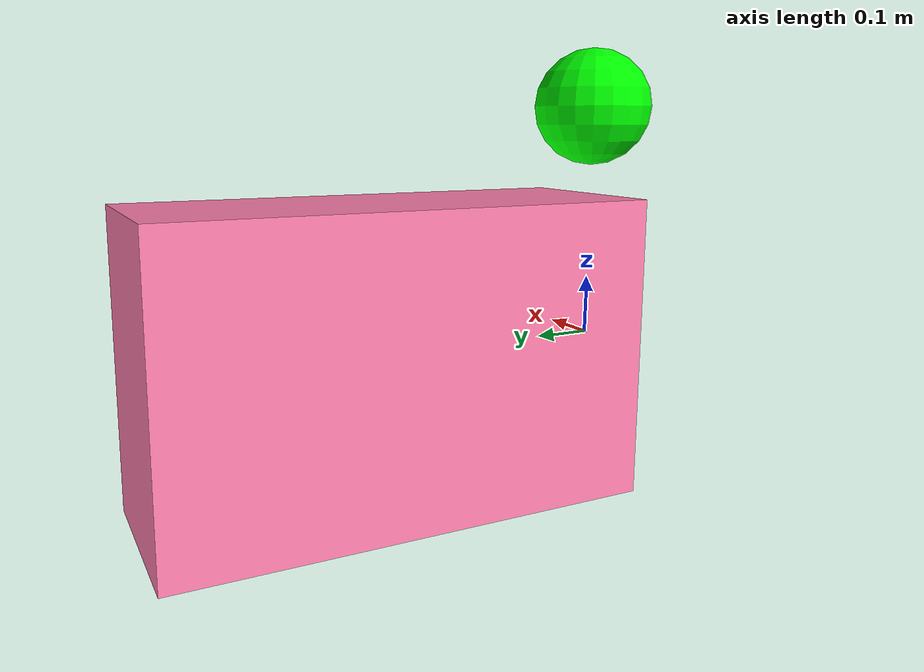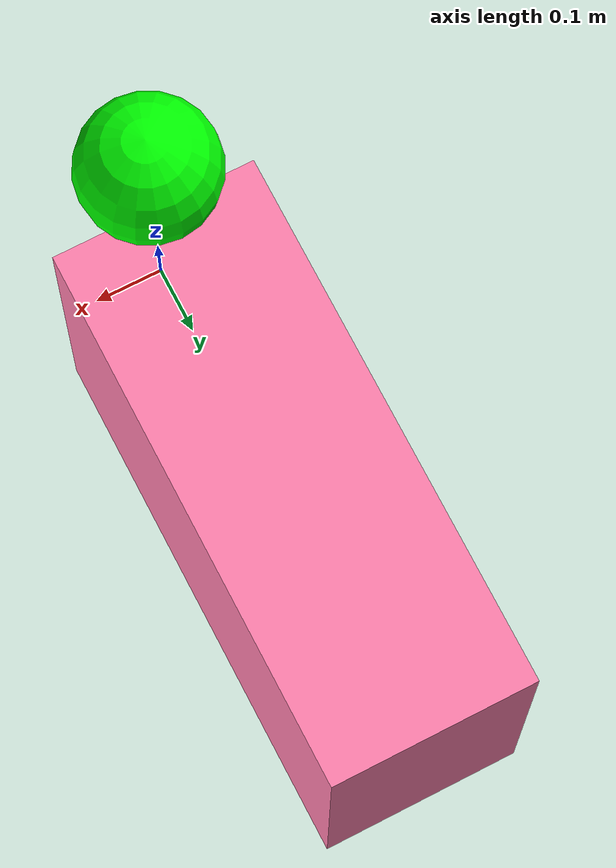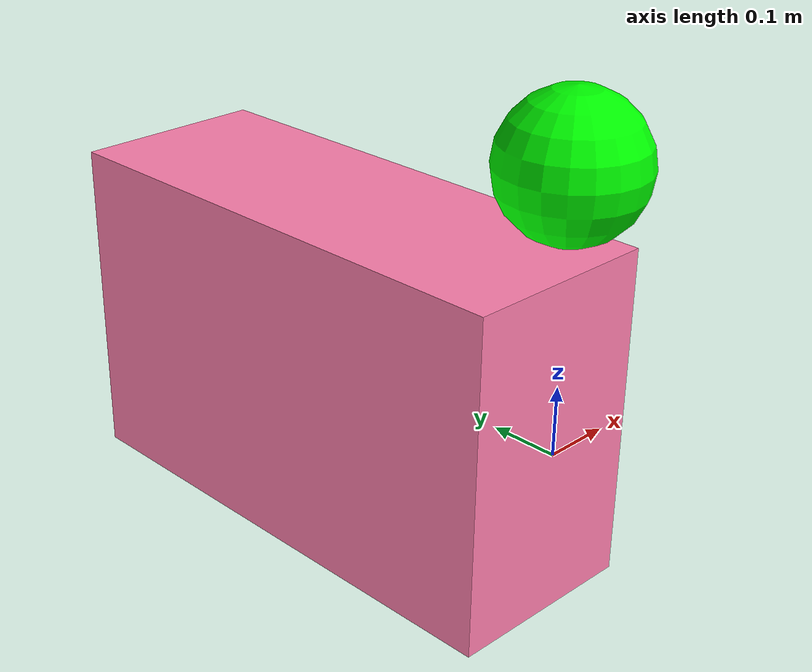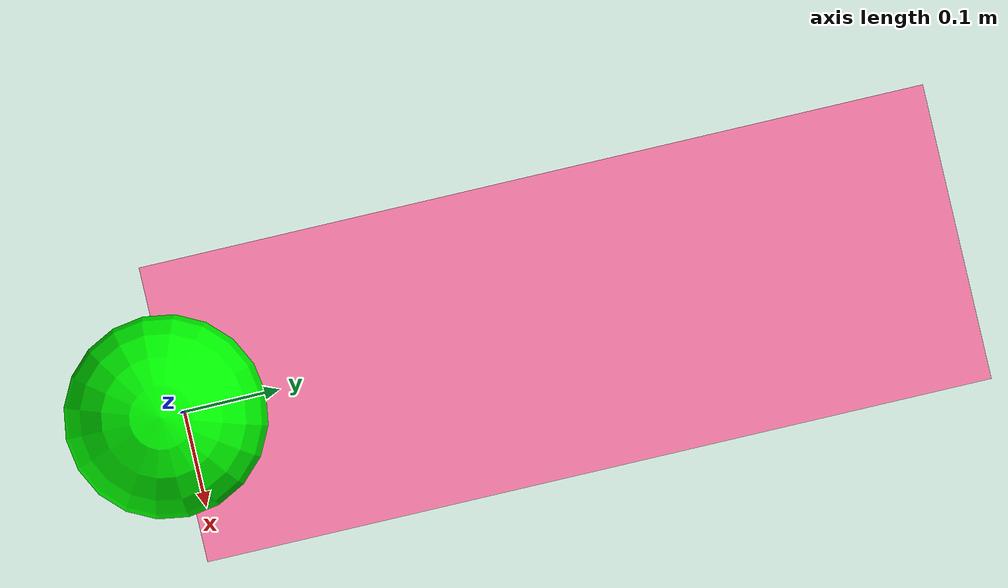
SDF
<sdf version="1.6">
  <model name="my_object">
    <link name="base_link">
      <kinematic>true</kinematic>

      <inertial>
        <pose>0 0 0 0 0 0</pose>
        <mass>1.0</mass>
        <inertia>
          <ixx>0.083</ixx>
          <ixy>0.04</ixy>
          <ixz>0.04</ixz>
          <iyy>0.083</iyy>
          <iyz>0.04</iyz>
          <izz>0.083</izz>
        </inertia>
      </inertial>

      <visual name="visual">
        <pose>0 0.4 0 0 0 0</pose>
        <geometry>
          <box>
            <size>0.3 0.8 0.5</size>
          </box>
        </geometry>
        <material>
          <ambient>1 0.5 0.68 1</ambient>
          <diffuse>1 0.5 0.68 1</diffuse>
        </material>
      </visual>

      <collision name="collision">
        <pose>0 0.4 0 0 0 0</pose>
        <geometry>
          <box>
            <size>0.3 0.8 0.5</size>
          </box>
        </geometry>
      </collision>
    </link>

    <link name="sphere_link">
      <kinematic>true</kinematic>

      <inertial>
        <pose>0 0 0 0 0 0</pose>
        <mass>1.0</mass>
        <inertia>
          <ixx>0.083</ixx>
          <ixy>0.0</ixy>
          <ixz>0.0</ixz>
          <iyy>0.083</iyy>
          <iyz>0.0</iyz>
          <izz>0.083</izz>
        </inertia>
      </inertial>

      <visual name="visual">
        <pose>0 0 0.4 0 0 0</pose>
        <geometry>
          <sphere>
            <radius>0.1</radius>
          </sphere>
        </geometry>
        <material>
          <ambient>0 1 0 1</ambient>
          <diffuse>0 1 0 1</diffuse>
        </material>
      </visual>

      <collision name="collision">
        <pose>0 0 0.4 0 0 0</pose>
        <geometry>
          <sphere>
            <radius>0.1</radius>
          </sphere>
        </geometry>
      </collision>
    </link>

    <joint name="box_sphere_joint" type="fixed">
      <parent>base_link</parent>
      <child>sphere_link</child>
    </joint>

  </model>
</sdf>
